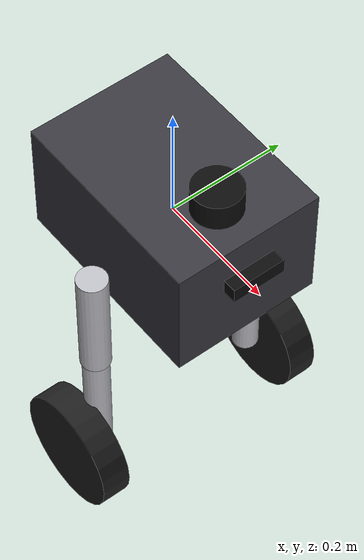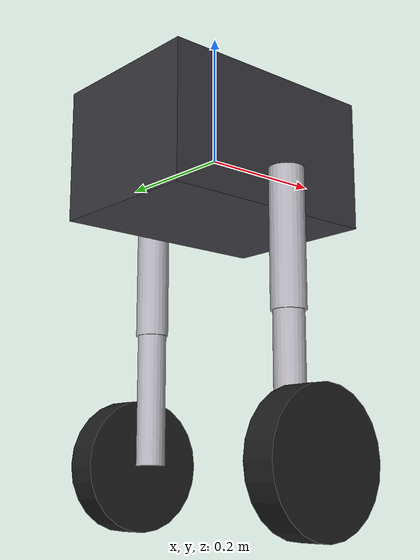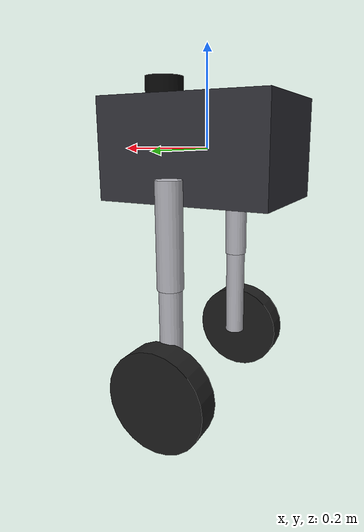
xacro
<?xml version="1.0"?>
<robot name="balancebot" xmlns:xacro="http://www.ros.org/wiki/xacro">

  <!-- Include Materials and Sensors -->
  <xacro:include filename="materials.xacro" />
  <xacro:include filename="sensors.xacro" />

  <!-- Geometric & Physical Properties -->
  <xacro:property name="torso_mass" value="12.0" />
  <xacro:property name="torso_len" value="0.35" />
  <xacro:property name="torso_width" value="0.25" />
  <xacro:property name="torso_height" value="0.20" />

  <xacro:property name="thigh_mass" value="0.8" />
  <xacro:property name="thigh_length" value="0.20" />
  <xacro:property name="thigh_radius" value="0.025" />

  <xacro:property name="shin_mass" value="0.8" />
  <xacro:property name="shin_length" value="0.20" />
  <xacro:property name="shin_radius" value="0.022" />

  <xacro:property name="wheel_mass" value="1.5" />
  <xacro:property name="wheel_radius" value="0.10" />
  <xacro:property name="wheel_width" value="0.05" />

  <xacro:property name="hip_offset_y" value="0.15" />
  <xacro:property name="hip_offset_z" value="-0.05" />
  <xacro:property name="wheel_spacing_y" value="0.04" />

  <!-- ================= Torso / Base Link ================= -->
  <link name="base_link">
    <inertial>
      <mass value="${torso_mass}"/>
      <origin xyz="0 0 0" rpy="0 0 0"/>
      <!-- Ixx = 1/12 * m * (w^2 + h^2) = 0.1025 -->
      <!-- Iyy = 1/12 * m * (l^2 + h^2) = 0.1625 -->
      <!-- Izz = 1/12 * m * (l^2 + w^2) = 0.1850 -->
      <inertia ixx="0.1025" ixy="0" ixz="0"
               iyy="0.1625" iyz="0"
               izz="0.1850"/>
    </inertial>
    <visual>
      <origin xyz="0 0 0" rpy="0 0 0"/>
      <geometry>
        <box size="${torso_len} ${torso_width} ${torso_height}"/>
      </geometry>
      <material name="chassis_dark"/>
    </visual>
    <collision>
      <origin xyz="0 0 0" rpy="0 0 0"/>
      <geometry>
        <box size="${torso_len} ${torso_width} ${torso_height}"/>
      </geometry>
    </collision>
  </link>

  <!-- ================= Leg Macro ================= -->
  <xacro:macro name="leg" params="prefix reflect">
    <!-- Hip Joint (Pitch revolute around Y) -->
    <joint name="${prefix}_hip_joint" type="revolute">
      <parent link="base_link"/>
      <child link="${prefix}_thigh_link"/>
      <origin xyz="0.0 ${reflect * hip_offset_y} ${hip_offset_z}" rpy="0 0 0"/>
      <axis xyz="0 1 0"/>
      <limit lower="-1.20" upper="1.20" effort="50.0" velocity="10.0"/>
      <dynamics damping="1.5" friction="0.1" spring_reference="0.0" spring_stiffness="150.0"/>
    </joint>

    <!-- Thigh Link -->
    <link name="${prefix}_thigh_link">
      <inertial>
        <mass value="${thigh_mass}"/>
        <origin xyz="0 0 ${-thigh_length / 2}" rpy="0 0 0"/>
        <inertia ixx="0.0028" ixy="0" ixz="0"
                 iyy="0.0028" iyz="0"
                 izz="0.00025"/>
      </inertial>
      <visual>
        <origin xyz="0 0 ${-thigh_length / 2}" rpy="0 0 0"/>
        <geometry>
          <cylinder radius="${thigh_radius}" length="${thigh_length}"/>
        </geometry>
        <material name="leg_metal"/>
      </visual>
      <collision>
        <origin xyz="0 0 ${-thigh_length / 2}" rpy="0 0 0"/>
        <geometry>
          <cylinder radius="${thigh_radius}" length="${thigh_length}"/>
        </geometry>
      </collision>
    </link>

    <!-- Knee Joint (Pitch revolute around Y) -->
    <joint name="${prefix}_knee_joint" type="revolute">
      <parent link="${prefix}_thigh_link"/>
      <child link="${prefix}_shin_link"/>
      <origin xyz="0 0 ${-thigh_length}" rpy="0 0 0"/>
      <axis xyz="0 1 0"/>
      <!-- Supports range 0 deg (straight) to 130 deg (crouched), covering height [0.18, 0.38] m -->
      <limit lower="0.0" upper="2.30" effort="50.0" velocity="10.0"/>
      <dynamics damping="2.0" friction="0.1" spring_reference="0.0" spring_stiffness="250.0"/>
    </joint>

    <!-- Shin Link -->
    <link name="${prefix}_shin_link">
      <inertial>
        <mass value="${shin_mass}"/>
        <origin xyz="0 0 ${-shin_length / 2}" rpy="0 0 0"/>
        <inertia ixx="0.0028" ixy="0" ixz="0"
                 iyy="0.0028" iyz="0"
                 izz="0.00025"/>
      </inertial>
      <visual>
        <origin xyz="0 0 ${-shin_length / 2}" rpy="0 0 0"/>
        <geometry>
          <cylinder radius="${shin_radius}" length="${shin_length}"/>
        </geometry>
        <material name="leg_metal"/>
      </visual>
      <collision>
        <origin xyz="0 0 ${-shin_length / 2}" rpy="0 0 0"/>
        <geometry>
          <cylinder radius="${shin_radius}" length="${shin_length}"/>
        </geometry>
      </collision>
    </link>

    <!-- Wheel Joint (Pitch continuous around Y) -->
    <joint name="${prefix}_wheel_joint" type="continuous">
      <parent link="${prefix}_shin_link"/>
      <child link="${prefix}_wheel_link"/>
      <origin xyz="0.0 ${reflect * wheel_spacing_y} ${-shin_length}" rpy="0 0 0"/>
      <axis xyz="0 1 0"/>
      <limit effort="25.0" velocity="30.0"/>
      <dynamics damping="0.005" friction="0.001"/>
    </joint>

    <!-- Wheel Link -->
    <link name="${prefix}_wheel_link">
      <inertial>
        <mass value="${wheel_mass}"/>
        <origin xyz="0 0 0" rpy="1.5707963 0 0"/>
        <!-- Cylinder with radius 0.10, length 0.05, mass 1.5 -->
        <!-- Iyy (symmetry axis Y) = 1/2 * m * r^2 = 0.0075 -->
        <!-- Ixx = Izz = 1/12 * m * (3*r^2 + h^2) = 0.00406 -->
        <inertia ixx="0.00406" ixy="0" ixz="0"
                 iyy="0.00750" iyz="0"
                 izz="0.00406"/>
      </inertial>
      <visual>
        <origin xyz="0 0 0" rpy="1.5707963 0 0"/>
        <geometry>
          <cylinder radius="${wheel_radius}" length="${wheel_width}"/>
        </geometry>
        <material name="wheel_rubber"/>
      </visual>
      <collision>
        <origin xyz="0 0 0" rpy="1.5707963 0 0"/>
        <geometry>
          <cylinder radius="${wheel_radius}" length="${wheel_width}"/>
        </geometry>
      </collision>
    </link>

    <!-- Gazebo Surface Friction for Wheel -->
    <gazebo reference="${prefix}_wheel_link">
      <mu1>1.0</mu1>
      <mu2>0.9</mu2>
      <kp>1000000.0</kp>
      <kd>100.0</kd>
      <material>Gazebo/DarkGrey</material>
    </gazebo>

    <!-- Joint Transmissions -->
    <transmission name="${prefix}_hip_trans">
      <type>transmission_interface/SimpleTransmission</type>
      <joint name="${prefix}_hip_joint">
        <hardwareInterface>hardware_interface/EffortJointInterface</hardwareInterface>
      </joint>
      <actuator name="${prefix}_hip_motor">
        <mechanicalReduction>1.0</mechanicalReduction>
      </actuator>
    </transmission>

    <transmission name="${prefix}_knee_trans">
      <type>transmission_interface/SimpleTransmission</type>
      <joint name="${prefix}_knee_joint">
        <hardwareInterface>hardware_interface/EffortJointInterface</hardwareInterface>
      </joint>
      <actuator name="${prefix}_knee_motor">
        <mechanicalReduction>1.0</mechanicalReduction>
      </actuator>
    </transmission>

    <transmission name="${prefix}_wheel_trans">
      <type>transmission_interface/SimpleTransmission</type>
      <joint name="${prefix}_wheel_joint">
        <hardwareInterface>hardware_interface/EffortJointInterface</hardwareInterface>
      </joint>
      <actuator name="${prefix}_wheel_motor">
        <mechanicalReduction>1.0</mechanicalReduction>
      </actuator>
    </transmission>
  </xacro:macro>

  <!-- Instantiate Left and Right Legs -->
  <xacro:leg prefix="left" reflect="1" />
  <xacro:leg prefix="right" reflect="-1" />

  <!-- ================= Gazebo Plugins ================= -->
  <gazebo>
    <plugin filename="gz-sim-joint-state-publisher-system"
            name="gz::sim::systems::JointStatePublisher">
      <topic>/joint_states</topic>
    </plugin>
    <plugin filename="gz-sim-apply-joint-force-system" name="gz::sim::systems::ApplyJointForce">
      <joint_name>left_wheel_joint</joint_name>
    </plugin>
    <plugin filename="gz-sim-apply-joint-force-system" name="gz::sim::systems::ApplyJointForce">
      <joint_name>right_wheel_joint</joint_name>
    </plugin>
    <plugin filename="gz-sim-apply-joint-force-system" name="gz::sim::systems::ApplyJointForce">
      <joint_name>left_hip_joint</joint_name>
    </plugin>
    <plugin filename="gz-sim-apply-joint-force-system" name="gz::sim::systems::ApplyJointForce">
      <joint_name>left_knee_joint</joint_name>
    </plugin>
    <plugin filename="gz-sim-apply-joint-force-system" name="gz::sim::systems::ApplyJointForce">
      <joint_name>right_hip_joint</joint_name>
    </plugin>
    <plugin filename="gz-sim-apply-joint-force-system" name="gz::sim::systems::ApplyJointForce">
      <joint_name>right_knee_joint</joint_name>
    </plugin>
  </gazebo>

</robot>

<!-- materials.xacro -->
<robot xmlns:xacro="http://www.ros.org/wiki/xacro">
  <material name="chassis_dark">
    <color rgba="0.22 0.22 0.25 1.0"/>
  </material>

  <material name="leg_metal">
    <color rgba="0.75 0.75 0.78 1.0"/>
  </material>

  <material name="wheel_rubber">
    <color rgba="0.12 0.12 0.12 1.0"/>
  </material>

  <material name="wheel_rim">
    <color rgba="0.95 0.45 0.10 1.0"/>
  </material>

  <material name="sensor_blue">
    <color rgba="0.10 0.45 0.85 1.0"/>
  </material>

  <material name="sensor_lens">
    <color rgba="0.05 0.05 0.05 1.0"/>
  </material>
</robot>

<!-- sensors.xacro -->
<robot xmlns:xacro="http://www.ros.org/wiki/xacro">

  <!-- ================= IMU Link ================= -->
  <link name="imu_link">
    <inertial>
      <mass value="0.05"/>
      <origin xyz="0 0 0" rpy="0 0 0"/>
      <inertia ixx="0.00001" ixy="0" ixz="0" iyy="0.00001" iyz="0" izz="0.00001"/>
    </inertial>
    <visual>
      <origin xyz="0 0 0" rpy="0 0 0"/>
      <geometry>
        <box size="0.03 0.03 0.015"/>
      </geometry>
      <material name="sensor_blue"/>
    </visual>
  </link>

  <joint name="imu_joint" type="fixed">
    <parent link="base_link"/>
    <child link="imu_link"/>
    <origin xyz="0 0 0" rpy="0 0 0"/>
  </joint>

  <!-- ================= 2D LiDAR ================= -->
  <link name="lidar_link">
    <inertial>
      <mass value="0.20"/>
      <origin xyz="0 0 0" rpy="0 0 0"/>
      <inertia ixx="0.0001" ixy="0" ixz="0" iyy="0.0001" iyz="0" izz="0.00015"/>
    </inertial>
    <visual>
      <origin xyz="0 0 0" rpy="0 0 0"/>
      <geometry>
        <cylinder radius="0.04" length="0.045"/>
      </geometry>
      <material name="sensor_lens"/>
    </visual>
    <collision>
      <origin xyz="0 0 0" rpy="0 0 0"/>
      <geometry>
        <cylinder radius="0.04" length="0.045"/>
      </geometry>
    </collision>
  </link>

  <joint name="lidar_joint" type="fixed">
    <parent link="base_link"/>
    <child link="lidar_link"/>
    <origin xyz="0.10 0 0.1225" rpy="0 0 0"/>
  </joint>

  <!-- ================= RGB-D Depth Camera ================= -->
  <link name="camera_link">
    <inertial>
      <mass value="0.10"/>
      <origin xyz="0 0 0" rpy="0 0 0"/>
      <inertia ixx="0.00005" ixy="0" ixz="0" iyy="0.00005" iyz="0" izz="0.00005"/>
    </inertial>
    <visual>
      <origin xyz="0 0 0" rpy="0 0 0"/>
      <geometry>
        <box size="0.025 0.09 0.025"/>
      </geometry>
      <material name="sensor_lens"/>
    </visual>
    <collision>
      <origin xyz="0 0 0" rpy="0 0 0"/>
      <geometry>
        <box size="0.025 0.09 0.025"/>
      </geometry>
    </collision>
  </link>

  <joint name="camera_joint" type="fixed">
    <parent link="base_link"/>
    <child link="camera_link"/>
    <origin xyz="0.185 0 0.03" rpy="0 0 0"/>
  </joint>

  <!-- Optical frame (Z forward, X right, Y down per ROS REP-103) -->
  <link name="camera_optical_frame"/>

  <joint name="camera_optical_joint" type="fixed">
    <parent link="camera_link"/>
    <child link="camera_optical_frame"/>
    <origin xyz="0 0 0" rpy="-1.5707963 0 -1.5707963"/>
  </joint>

  <!-- ================= Gazebo Harmonic Sensor Systems ================= -->
  <gazebo reference="imu_link">
    <sensor name="imu_sensor" type="imu">
      <always_on>1</always_on>
      <update_rate>200</update_rate>
      <visualize>false</visualize>
      <topic>/imu/data</topic>
      <gz_frame_id>imu_link</gz_frame_id>
      <imu>
        <angular_velocity>
          <x><noise type="gaussian"><mean>0.0</mean><stddev>0.005</stddev></noise></x>
          <y><noise type="gaussian"><mean>0.0</mean><stddev>0.005</stddev></noise></y>
          <z><noise type="gaussian"><mean>0.0</mean><stddev>0.005</stddev></noise></z>
        </angular_velocity>
        <linear_acceleration>
          <x><noise type="gaussian"><mean>0.0</mean><stddev>0.02</stddev></noise></x>
          <y><noise type="gaussian"><mean>0.0</mean><stddev>0.02</stddev></noise></y>
          <z><noise type="gaussian"><mean>0.0</mean><stddev>0.02</stddev></noise></z>
        </linear_acceleration>
      </imu>
    </sensor>
  </gazebo>

  <gazebo reference="lidar_link">
    <sensor name="lidar_sensor" type="gpu_lidar">
      <always_on>1</always_on>
      <update_rate>20</update_rate>
      <visualize>false</visualize>
      <topic>/scan</topic>
      <gz_frame_id>lidar_link</gz_frame_id>
      <ray>
        <scan>
          <horizontal>
            <samples>360</samples>
            <resolution>1</resolution>
            <min_angle>-3.14159265</min_angle>
            <max_angle>3.14159265</max_angle>
          </horizontal>
        </scan>
        <range>
          <min>0.10</min>
          <max>12.0</max>
          <resolution>0.01</resolution>
        </range>
      </ray>
    </sensor>
  </gazebo>

  <gazebo reference="camera_link">
    <sensor name="depth_camera_sensor" type="rgbd_camera">
      <always_on>1</always_on>
      <update_rate>30</update_rate>
      <visualize>false</visualize>
      <topic>/camera</topic>
      <gz_frame_id>camera_optical_frame</gz_frame_id>
      <camera>
        <horizontal_fov>1.047198</horizontal_fov>
        <image>
          <width>640</width>
          <height>480</height>
          <format>R8G8B8</format>
        </image>
        <clip>
          <near>0.1</near>
          <far>10.0</far>
        </clip>
        <depth_camera>
          <clip>
            <near>0.1</near>
            <far>10.0</far>
          </clip>
        </depth_camera>
      </camera>
    </sensor>
  </gazebo>

</robot>
